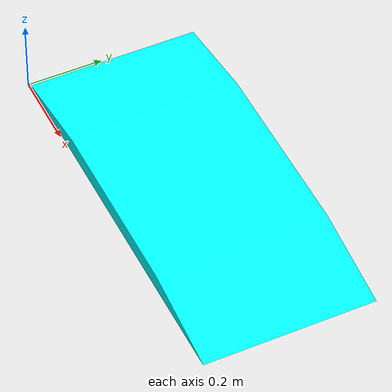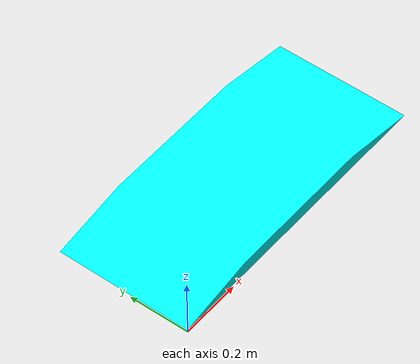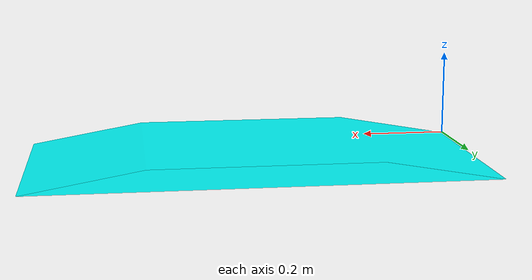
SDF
<?xml version="1.0" ?>
<sdf version="1.6">
  <model name="20-slope">
    <static>true</static>
    <link name="link">
      <collision name="collision">
        <geometry>
          <mesh>
            <scale>1 1 1</scale>
            <uri>model://Tr_wheeled/meshes/black_obst_traversable_slope_wheeled.STL</uri>
          </mesh>
        </geometry>
      </collision>
      <visual name="visual">
        <geometry>
          <mesh>
            <scale>1 1 1</scale>
            <uri>model://Tr_wheeled/meshes/black_obst_traversable_slope_wheeled.STL</uri>
          </mesh>
        </geometry>
        <material>
          <ambient>0.5 0.5 0.5 1</ambient>
          <diffuse>0 1 1 1</diffuse>
          <specular>0.1 0.1 0.1 1</specular>
          <emissive>0 0 0 1</emissive>
        </material>
      </visual>
    </link>
  </model>
</sdf>
